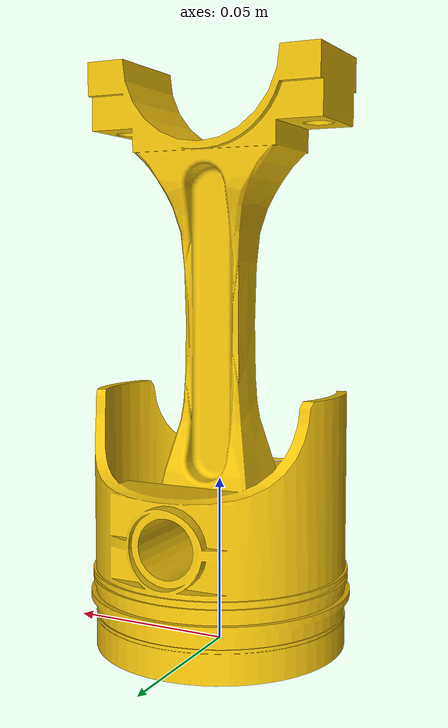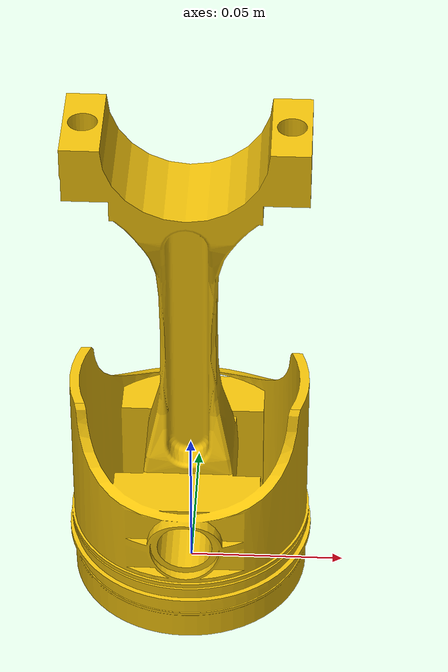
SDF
<?xml version='1.0'?>
<sdf version='1.6'>
  <model name='piston_and_conrod'>
    <link name='link_12'>
      <pose frame=''>-0.00025 -0.00015 2.1e-05 0 -0 0</pose>
<inertial>
    <pose>0.0 0 0.057495 0 0 0</pose>
    <mass>0.05</mass>
    <inertia>
      <ixx>0.0014710151946336167</ixx>
      <ixy>0</ixy>
      <ixz>-0</ixz>
      <iyy> 0.0014710151946336167</iyy>
      <iyz>0</iyz>
      <izz>0.0003899471</izz>
    </inertia>
  </inertial>
          <visual name='visual'>
        <geometry>
          <mesh>
            <uri>model://piston_and_conrod/Piston_and_Conrod.stl</uri>
            <scale>1 1 1</scale>
          </mesh>
        </geometry>
        <material>
          <ambient>0.933 0.7490 0.0392 1</ambient>
          <diffuse>0.933 0.7490 0.0392 1</diffuse>
          <specular>0.01 0.01 0.01 1</specular>
          <emissive>0 0 0 1</emissive>
          <shader type='vertex'>
            <normal_map>__default__</normal_map>
          </shader>
        </material>
        <cast_shadows>1</cast_shadows>
        <transparency>0</transparency>
      </visual>
      <collision name='collision'>
        <laser_retro>0</laser_retro>
        <max_contacts>10</max_contacts>
        <pose frame=''>0 0 0 0 -0 0</pose>
        <geometry>
          <mesh>
            <uri>model://piston_and_conrod/Piston_and_Conrod.stl</uri>
            <scale>1 1 1</scale>
          </mesh>
        </geometry>

<surface>
          <friction>
            <ode>
              <mu>1e15</mu>
              <mu2>1e15</mu2>
            </ode>
          </friction>
          <contact>
            <ode>
              <kp>1e15</kp>
              <kd>1e13</kd>
              <min_depth>0.0001</min_depth>
              <max_vel>0</max_vel>
            </ode>
          </contact>
        </surface>
       </collision>
    </link>

    <static>0</static>
    <allow_auto_disable>1</allow_auto_disable>
  </model>
</sdf>
